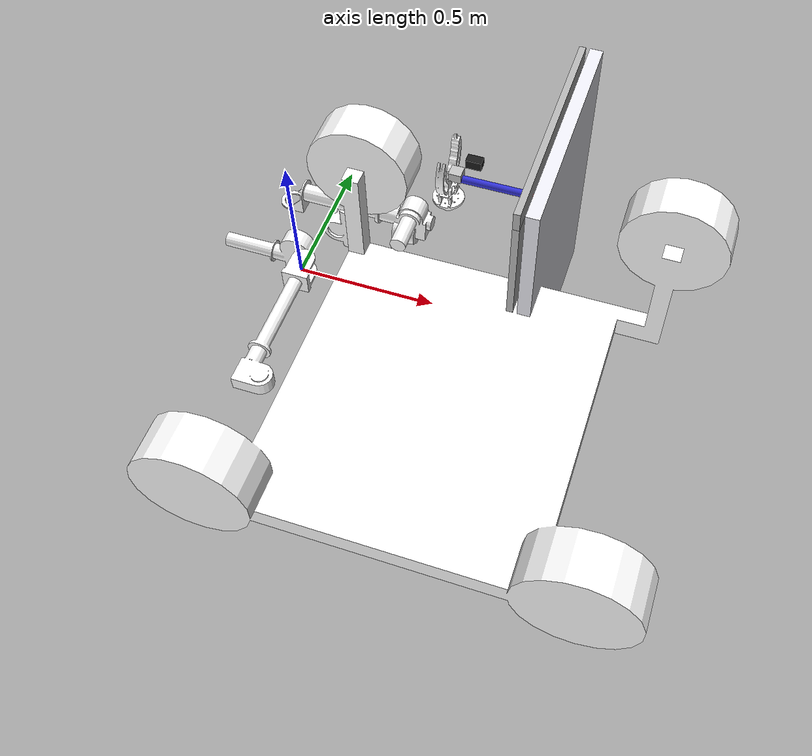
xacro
<?xml version="1.0" ?>
<!-- |    This document was autogenerated by xacro from arm_description.urdf           | -->
<!-- |    EDITING THIS FILE BY HAND IS NOT RECOMMENDED                                 | -->
<robot name="arm_description" xmlns:xacro="http://ros.org/wiki/xacro">

  <xacro:include filename="$(find arm_description)/urdf/door.xacro" />

  <link name="world" />

   <!-- ///   bottom_joint   // -->
    <joint name="bottom_joint" type="fixed">
        <origin xyz="0 0 0" rpy="0 0 0" />
        <parent link="world"/>
        <child link="base_link"/>
    </joint>

  <link name="base_link">
    <inertial>
      <origin rpy="0 0 0" xyz="-0.081857 -0.002 0.0084535"/>
      <mass value="1.4824"/>
      <inertia ixx="0.0028072" ixy="1.2257E-09" ixz="0.00058213" iyy="0.0062535" iyz="-8.8721E-11" izz="0.0072115"/>
    </inertial>
    <visual>
      <origin rpy="0 0 0" xyz="0 0 0"/>
      <geometry>
        <mesh filename="package://arm_description/meshes/base_link.STL"/>
      </geometry>
      <material name="">
        <color rgba="1 1 1 1"/>
      </material>
    </visual>
    <collision>
      <origin rpy="0 0 0" xyz="0 0 0"/>
      <geometry>
        <mesh filename="package://arm_description/meshes/base_link.STL"/>
      </geometry>
    </collision>
  </link>
  <link name="link1">
    <inertial>
      <origin rpy="0 0 0" xyz="0.031619 0.01494 0.10954"/>
      <mass value="0.59945"/>
      <inertia ixx="0.0017653" ixy="-6.5277E-05" ixz="4.6374E-05" iyy="0.0023729" iyz="2.376E-05" izz="0.0024373"/>
    </inertial>
    <visual>
      <origin rpy="0 0 0" xyz="0 0 0"/>
      <geometry>
        <mesh filename="package://arm_description/meshes/link1.STL"/>
      </geometry>
      <material name="">
        <color rgba="1 1 1 1"/>
      </material>
    </visual>
    <collision>
      <origin rpy="0 0 0" xyz="0 0 0"/>
      <geometry>
        <mesh filename="package://arm_description/meshes/link1.STL"/>
      </geometry>
    </collision>
  </link>
  <joint name="joint1" type="revolute">
    <origin rpy="0 0 0" xyz="0.0020007 -0.002 0.0375"/>
    <parent link="base_link"/>
    <child link="link1"/>
    <axis xyz="0 0 -1"/>
    <limit effort="300" lower="-2.26" upper="2.0" velocity="1"/>
  </joint>
  <link name="link2">
    <inertial>
      <origin rpy="0 0 0" xyz="5.3285E-05 -0.027374 0.17519"/>
      <mass value="1.1062"/>
      <inertia ixx="0.014455" ixy="-9.4639E-07" ixz="2.2609E-05" iyy="0.015367" iyz="-5.4137E-06" izz="0.0013213"/>
    </inertial>
    <visual>
      <origin rpy="0 0 0" xyz="0 0 0"/>
      <geometry>
        <mesh filename="package://arm_description/meshes/link2.STL"/>
      </geometry>
      <material name="">
        <color rgba="1 1 1 1"/>
      </material>
    </visual>
    <collision>
      <origin rpy="0 0 0" xyz="0 0 0"/>
      <geometry>
        <mesh filename="package://arm_description/meshes/link2.STL"/>
      </geometry>
    </collision>
  </link>
  <joint name="joint2" type="revolute">
    <origin rpy="0 0 0" xyz="0.07 -0.1005 0.1005"/>
    <parent link="link1"/>
    <child link="link2"/>
    <axis xyz="0 1 0"/>
    <limit effort="300" lower="-1.047" upper="1.57" velocity="1"/>
  </joint>
  <link name="link3">
    <inertial>
      <origin rpy="0 0 0" xyz="-0.0041112 0.11007 0.053336"/>
      <mass value="0.90872"/>
      <inertia ixx="0.0035679" ixy="-3.4657E-06" ixz="-3.3587E-05" iyy="0.004763" iyz="8.2362E-05" izz="0.0037939"/>
    </inertial>
    <visual>
      <origin rpy="0 0 0" xyz="0 0 0"/>
      <geometry>
        <mesh filename="package://arm_description/meshes/link3.STL"/>
      </geometry>
      <material name="">
        <color rgba="1 1 1 1"/>
      </material>
    </visual>
    <collision>
      <origin rpy="0 0 0" xyz="0 0 0"/>
      <geometry>
        <mesh filename="package://arm_description/meshes/link3.STL"/>
      </geometry>
    </collision>
  </link>
  <joint name="joint3" type="revolute">
    <origin rpy="0 0 0" xyz="0 0.002 0.35"/>
    <parent link="link2"/>
    <child link="link3"/>
    <axis xyz="0 1 0"/>
    <limit effort="300" lower="-1.3" upper="2.0" velocity="1"/>
  </joint>
  <link name="link4">
    <inertial>
      <origin rpy="0 0 0" xyz="0.117056222931893 -0.0548288202127669 -7.21261931746486E-06"/>
      <mass value="0.625047051095478"/>
      <inertia ixx="0.00252942691278061" ixy="0.00144480785525377" ixz="-4.86294325231637E-09" iyy="0.00491290724987717" iyz="-8.58870309859859E-10" izz="0.00588049811460407"/>
    </inertial>
    <visual>
      <origin rpy="0 0 0" xyz="0 0 0"/>
      <geometry>
        <mesh filename="package://arm_description/meshes/link4.STL"/>
      </geometry>
      <material name="">
        <color rgba="1 1 1 1"/>
      </material>
    </visual>
    <collision>
      <origin rpy="0 0 0" xyz="0 0 0"/>
      <geometry>
        <mesh filename="package://arm_description/meshes/link4.STL"/>
      </geometry>
    </collision>
  </link>
  <joint name="joint4" type="revolute">
    <origin rpy="0 0 0" xyz="0.13 0.1005 0.078"/>
    <parent link="link3"/>
    <child link="link4"/>
    <axis xyz="-1 0 0"/>
    <limit effort="300" lower="-2.62" upper="2.62" velocity="1"/>
  </joint>
  <link name="link5">
    <inertial>
      <origin rpy="0 0 0" xyz="-0.011840634998643 0.106602835589954 0.0349510445342055"/>
      <mass value="0.443498179105702"/>
      <inertia ixx="0.00129615137685354" ixy="-1.54725803762421E-05" ixz="-5.24093422675624E-05" iyy="0.00128586034229671" iyz="-9.21192736827939E-05" izz="0.00105468178379909"/>
    </inertial>
    <visual>
      <origin rpy="0 0 0" xyz="0 0 0"/>
      <geometry>
        <mesh filename="package://arm_description/meshes/link5.STL"/>
      </geometry>
      <material name="">
        <color rgba="1 1 1 1"/>
      </material>
    </visual>
    <collision>
      <origin rpy="0 0 0" xyz="0 0 0"/>
      <geometry>
        <mesh filename="package://arm_description/meshes/link5.STL"/>
      </geometry>
    </collision>
  </link>
  <joint name="joint5" type="revolute">
    <origin rpy="0 0 0" xyz="0.25 -0.088 0"/>
    <parent link="link4"/>
    <child link="link5"/>
    <axis xyz="0 1 0"/>
    <limit effort="300" lower="-1.57" upper="1.57" velocity="1"/>
  </joint>
  <link name="link6">
    <inertial>
      <origin rpy="0 0 0" xyz="-0.00702268700914466 3.56721906725199E-05 1.30147271060199E-06"/>
      <mass value="0.0780766932579047"/>
      <inertia ixx="9.13437566476818E-05" ixy="8.08588335297073E-09" ixz="2.95007771206789E-10" iyy="4.90773832491819E-05" iyz="1.30776837611464E-09" izz="4.90415862395273E-05"/>
    </inertial>
    <visual>
      <origin rpy="0 0 0" xyz="0 0 0"/>
      <geometry>
        <mesh filename="package://arm_description/meshes/link6.STL"/>
      </geometry>
      <material name="">
        <color rgba="1 1 1 1"/>
      </material>
    </visual>
    <collision>
      <origin rpy="0 0 0" xyz="0 0 0"/>
      <geometry>
        <mesh filename="package://arm_description/meshes/link6.STL"/>
      </geometry>
    </collision>
  </link>
  <joint name="joint6" type="revolute">
    <origin rpy="0 0 0" xyz="0.1024 0.099 0.07"/>
    <parent link="link5"/>
    <child link="link6"/>
    <axis xyz="1 0 0"/>
    <limit effort="300" lower="-6.28" upper="6.28" velocity="1"/>
  </joint>

  <link name="spray_gun_mount_link">
    <visual>
      <origin xyz="0 0 0.015" rpy="0 0 0"/>
      <geometry>
        <box size="0.04 0.04 0.03"/>
      </geometry>
      <material name="spray_mount_gray">
        <color rgba="0.75 0.75 0.75 1.0"/>
      </material>
    </visual>
    <collision>
      <origin xyz="0 0 0.015" rpy="0 0 0"/>
      <geometry>
        <box size="0.04 0.04 0.03"/>
      </geometry>
    </collision>
    <inertial>
      <origin xyz="0 0 0.015" rpy="0 0 0"/>
      <mass value="0.2"/>
      <inertia ixx="0.0001" ixy="0.0" ixz="0.0"
               iyy="0.0001" iyz="0.0"
               izz="0.0001"/>
    </inertial>
  </link>

  <joint name="spray_gun_mount_joint" type="fixed">
    <parent link="link6"/>
    <child link="spray_gun_mount_link"/>

    <origin xyz="0.025 0 0.01" rpy="0 0 0"/>
  </joint>

  <link name="spray_gun_link">
    <visual>

      <origin xyz="0.12 0 0" rpy="0 1.5708 0"/>
      <geometry>
        <cylinder radius="0.012" length="0.24"/>
      </geometry>
      <material name="spray_blue">
        <color rgba="0.2 0.2 0.85 1.0"/>
      </material>
    </visual>
    <collision>
      <origin xyz="0.12 0 0" rpy="0 1.5708 0"/>
      <geometry>
        <cylinder radius="0.012" length="0.24"/>
      </geometry>
    </collision>
    <inertial>
      <origin xyz="0.12 0 0" rpy="0 0 0"/>
      <mass value="0.3"/>
      <inertia ixx="0.001" ixy="0.0" ixz="0.0"
               iyy="0.001" iyz="0.0"
               izz="0.0001"/>
    </inertial>
  </link>

  <!-- spray_gun -->
  <joint name="spray_gun_joint" type="fixed">
    <parent link="spray_gun_mount_link"/>
    <child link="spray_gun_link"/>
    <origin xyz="0 0 0" rpy="0 0 0"/>
  </joint>

  <!-- spray_tcp -->
  <link name="spray_tcp_link">
    <visual>
      <origin xyz="0 0 0" rpy="0 0 0"/>
      <geometry>
        <sphere radius="0.008"/>
      </geometry>
      <material name="tcp_red">
        <color rgba="1.0 0.0 0.0 1.0"/>
      </material>
    </visual>
  </link>

  <joint name="spray_tcp_joint" type="fixed">
    <parent link="spray_gun_link"/>
    <child link="spray_tcp_link"/>

    <origin xyz="0.24 0 0" rpy="0 0 0"/>
  </joint>

  <!-- RGB-D camera -->
  <link name="rgbd_camera_link">
    <visual>
      <origin xyz="0.025 0 0" rpy="0 0 0"/>
      <geometry>
        <box size="0.05 0.03 0.03"/>
      </geometry>
      <material name="camera_black">
        <color rgba="0.1 0.1 0.1 1.0"/>
      </material>
    </visual>
    <collision>
      <origin xyz="0.025 0 0" rpy="0 0 0"/>
      <geometry>
        <box size="0.05 0.03 0.03"/>
      </geometry>
    </collision>
    <inertial>
      <origin xyz="0.025 0 0" rpy="0 0 0"/>
      <mass value="0.15"/>
      <inertia ixx="0.00005" ixy="0.0" ixz="0.0"
               iyy="0.00005" iyz="0.0"
               izz="0.00005"/>
    </inertial>
  </link>

  <joint name="rgbd_camera_joint" type="fixed">
    <parent link="spray_gun_mount_link"/>
    <child link="rgbd_camera_link"/>
    <origin xyz="0.02 0.04 0.04" rpy="0 0 0"/>
  </joint>

  <link name="rgbd_camera_optical_frame"/>

  <joint name="rgbd_camera_optical_joint" type="fixed">
    <parent link="rgbd_camera_link"/>
    <child link="rgbd_camera_optical_frame"/>
    <origin xyz="0.05 0 0" rpy="-1.5708 0 -1.5708"/>
  </joint>

  <joint name="world_to_door_joint" type="fixed">
    <parent link="world"/>
    <child link="door_link"/>
    <origin xyz="0.90 0.00 0.50" rpy="0 0 3.14159"/>
  </joint>

  <!-- Transmissions for ROS Control -->
    <!-- Transmissions for ros_control -->
  <xacro:macro name="transmission_block" params="joint_name">
    <transmission name="${joint_name}_transmission">
      <type>transmission_interface/SimpleTransmission</type>

      <joint name="${joint_name}">
        <hardwareInterface>hardware_interface/PositionJointInterface</hardwareInterface>
      </joint>

      <actuator name="${joint_name}_motor">
        <hardwareInterface>hardware_interface/PositionJointInterface</hardwareInterface>
        <mechanicalReduction>1</mechanicalReduction>
      </actuator>
    </transmission>
  </xacro:macro>

    <xacro:transmission_block joint_name="joint1"/>
    <xacro:transmission_block joint_name="joint2"/>
    <xacro:transmission_block joint_name="joint3"/>
    <xacro:transmission_block joint_name="joint4"/>
    <xacro:transmission_block joint_name="joint5"/>
    <xacro:transmission_block joint_name="joint6"/>
    <!--xacro:transmission_block joint_name="finger_joint1"/-->

    <!-- ros_control plugin -->
    <gazebo>
    <plugin name="gazebo_ros_control" filename="libgazebo_ros_control.so">
      <robotNamespace>/arm</robotNamespace>
      <robotSimType>gazebo_ros_control/DefaultRobotHWSim</robotSimType>
    </plugin>
  </gazebo>

  <gazebo reference="base_link">
    <material>Gazebo/White</material>
    <mu1>1.0</mu1>
    <mu2>1.0</mu2>
  </gazebo>

  <gazebo reference="spray_gun_link">
    <material>Gazebo/Blue</material>
  </gazebo>

  <gazebo reference="rgbd_camera_link">
    <material>Gazebo/Black</material>

    <sensor type="depth" name="rgbd_camera_sensor">
      <always_on>true</always_on>
      <update_rate>15.0</update_rate>
      <visualize>true</visualize>

      <camera>
        <horizontal_fov>1.047</horizontal_fov>
        <image>
          <width>640</width>
          <height>480</height>
          <format>R8G8B8</format>
        </image>
        <clip>
          <near>0.05</near>
          <far>3.0</far>
        </clip>
      </camera>

      <plugin name="gazebo_ros_openni_kinect" filename="libgazebo_ros_openni_kinect.so">
        <alwaysOn>true</alwaysOn>
        <updateRate>15.0</updateRate>
        <cameraName>camera</cameraName>
        <frameName>rgbd_camera_optical_frame</frameName>

        <imageTopicName>/camera/color/image_raw</imageTopicName>
        <depthImageTopicName>/camera/depth/image_raw</depthImageTopicName>
        <pointCloudTopicName>/camera/depth/points</pointCloudTopicName>
        <cameraInfoTopicName>/camera/color/camera_info</cameraInfoTopicName>
        <depthImageCameraInfoTopicName>/camera/depth/camera_info</depthImageCameraInfoTopicName>

        <baseline>0.0</baseline>
        <distortion_k1>0.0</distortion_k1>
        <distortion_k2>0.0</distortion_k2>
        <distortion_k3>0.0</distortion_k3>
        <distortion_t1>0.0</distortion_t1>
        <distortion_t2>0.0</distortion_t2>

        <pointCloudCutoff>0.05</pointCloudCutoff>
        <pointCloudCutoffMax>3.0</pointCloudCutoffMax>
      </plugin>
    </sensor>
  </gazebo>

</robot>

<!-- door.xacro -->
<robot name="door_panel" xmlns:xacro="http://ros.org/wiki/xacro">

  <link name="door_link">

    <inertial>
      <origin xyz="0 0 0" rpy="0 0 0"/>
      <mass value="8.0"/>
      <inertia ixx="0.2" ixy="0.0" ixz="0.0"
               iyy="0.2" iyz="0.0"
               izz="0.2"/>
    </inertial>

    <visual>
      <origin xyz="0 0 0" rpy="0 0 0"/>
      <geometry>
        <box size="0.04 0.70 0.90"/>
      </geometry>
      <material name="door_main_white">
        <color rgba="0.92 0.92 0.95 1.0"/>
      </material>
    </visual>

    <collision>
      <origin xyz="0 0 0" rpy="0 0 0"/>
      <geometry>
        <box size="0.04 0.90 1.20"/>
      </geometry>
    </collision>
  </link>

  <link name="door_top_frame">
    <visual>
      <origin xyz="0.012 0 0" rpy="0 0 0"/>
      <geometry>
        <box size="0.02 0.70 0.06"/>
      </geometry>
      <material name="door_frame_gray">
        <color rgba="0.7 0.7 0.7 1.0"/>
      </material>
    </visual>
  </link>

  <joint name="door_top_frame_joint" type="fixed">
    <parent link="door_link"/>
    <child link="door_top_frame"/>
    <origin xyz="0.03 0 0.42" rpy="0 0 0"/>
  </joint>

  <link name="door_bottom_frame">
    <visual>
      <origin xyz="0.012 0 0" rpy="0 0 0"/>
      <geometry>
        <box size="0.02 0.70 0.06"/>
      </geometry>
      <material name="door_frame_gray2">
        <color rgba="0.7 0.7 0.7 1.0"/>
      </material>
    </visual>
  </link>

  <joint name="door_bottom_frame_joint" type="fixed">
    <parent link="door_link"/>
    <child link="door_bottom_frame"/>
    <origin xyz="0.03 0 -0.42" rpy="0 0 0"/>
  </joint>

  <link name="door_left_frame">
    <visual>
      <origin xyz="0.012 0 0" rpy="0 0 0"/>
      <geometry>
        <box size="0.02 0.06 0.78"/>
      </geometry>
      <material name="door_frame_gray3">
        <color rgba="0.72 0.72 0.72 1.0"/>
      </material>
    </visual>
  </link>

  <joint name="door_left_frame_joint" type="fixed">
    <parent link="door_link"/>
    <child link="door_left_frame"/>
    <origin xyz="0.03 -0.32 0" rpy="0 0 0"/>
  </joint>

  <link name="door_right_frame">
    <visual>
      <origin xyz="0.012 0 0" rpy="0 0 0"/>
      <geometry>
        <box size="0.02 0.06 0.78"/>
      </geometry>
      <material name="door_frame_gray4">
        <color rgba="0.72 0.72 0.72 1.0"/>
      </material>
    </visual>
  </link>

  <joint name="door_right_frame_joint" type="fixed">
    <parent link="door_link"/>
    <child link="door_right_frame"/>
    <origin xyz="0.03 0.32 0" rpy="0 0 0"/>
  </joint>

  <link name="door_surface_patch">
    <visual>
      <origin xyz="0.005 0 0" rpy="0 0 0"/>
      <geometry>
        <box size="0.01 0.50 0.60"/>
      </geometry>
      <material name="door_patch_blue">
        <color rgba="0.55 0.70 0.95 1.0"/>
      </material>
    </visual>
  </link>

  <joint name="door_surface_patch_joint" type="fixed">
    <parent link="door_link"/>
    <child link="door_surface_patch"/>
    <origin xyz="0.025 0 0.00" rpy="0 0 0"/>
  </joint>

  <link name="door_center_marker">
    <visual>
      <origin xyz="0 0 0" rpy="0 0 0"/>
      <geometry>
        <sphere radius="0.018"/>
      </geometry>
      <material name="door_center_red">
        <color rgba="1.0 0.2 0.2 1.0"/>
      </material>
    </visual>
  </link>

  <joint name="door_center_marker_joint" type="fixed">
    <parent link="door_link"/>
    <child link="door_center_marker"/>
    <origin xyz="0.03 0 0" rpy="0 0 0"/>
  </joint>

  <gazebo reference="door_link">
    <material>Gazebo/White</material>
    <mu1>0.8</mu1>
    <mu2>0.8</mu2>
  </gazebo>

  <gazebo reference="door_surface_patch">
    <material>Gazebo/SkyBlue</material>
  </gazebo>

</robot>
